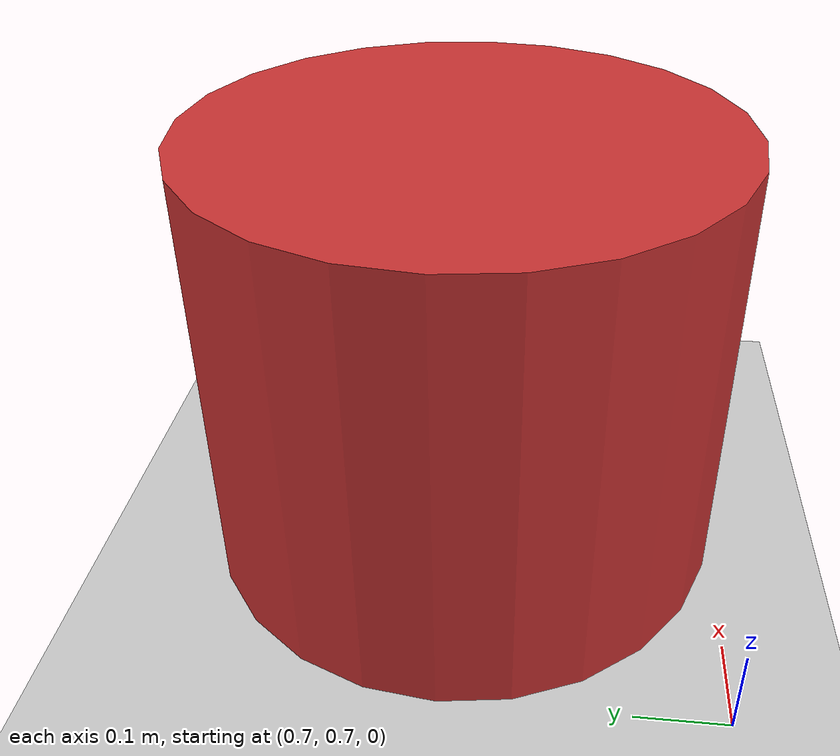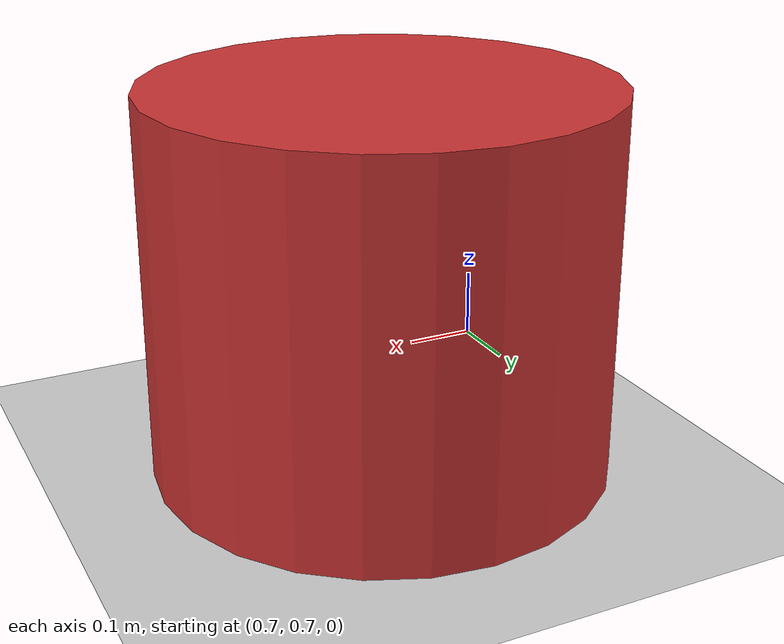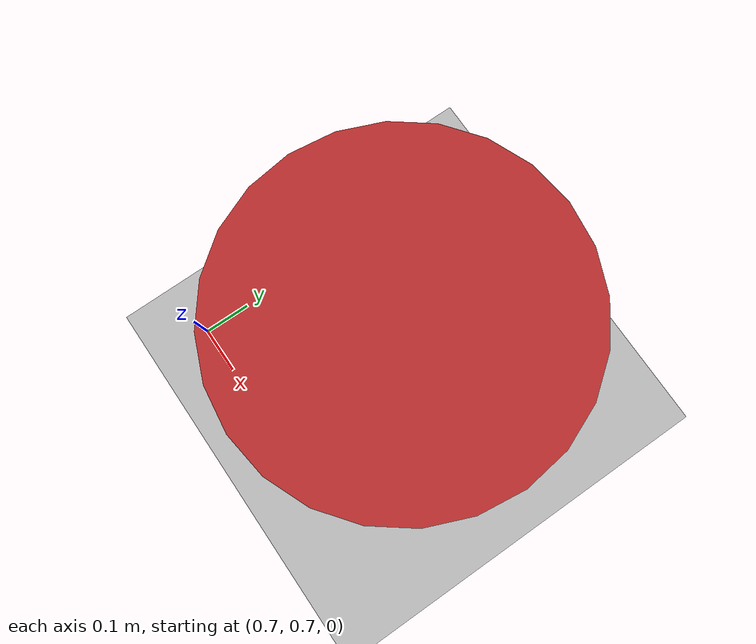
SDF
<sdf version="1.7">
 <world name="default">
  <light name="sun" type="directional">
   <pose>0 0 10 0 -0 0</pose>
   <diffuse>0.8 0.8 0.8 1</diffuse>
   <specular>0.2 0.2 0.2 1</specular>
   <attenuation>
    <range>1000</range>
    <constant>0.9</constant>
    <linear>0.01</linear>
    <quadratic>0.001</quadratic>
   </attenuation>
   <direction>-0.5 0.1 -0.9</direction>
   <spot><inner_angle>0</inner_angle><outer_angle>0</outer_angle><falloff>0</falloff></spot>
  </light>
  <model name="ground_plane">
   <static>1</static>
   <link name="link">
    <collision name="collision">
     <geometry><plane><normal>0 0 1</normal><size>100 100</size></plane></geometry>
     <surface>
      <contact><collide_bitmask>65535</collide_bitmask></contact>
      <friction>
       <ode><mu>10</mu><mu2>10</mu2></ode>
       <torsional>
        <ode><mu>10</mu><surface_radius>0.06</surface_radius><use_patch_radius>false</use_patch_radius></ode>
       </torsional>
      </friction>
     </surface>
    </collision>
    <visual name="visual">
     <cast_shadows>0</cast_shadows>
     <geometry><plane><normal>0 0 1</normal><size>100 100</size></plane></geometry>
     <material>
      <script><uri>file://media/materials/scripts/gazebo.material</uri><name>Gazebo/Grey</name></script>
     </material>
    </visual>
   </link>
  </model>
  <gravity>0 0 -9.8</gravity>
  <magnetic_field>6e-06 2.3e-05 -4.2e-05</magnetic_field>
  <atmosphere type="adiabatic"/>
  <physics type="ode">
   <max_step_size>0.001</max_step_size>
   <real_time_factor>1</real_time_factor>
   <real_time_update_rate>1000</real_time_update_rate>
  </physics>
  <scene><ambient>0.4 0.4 0.4 1</ambient><background>0.7 0.7 0.7 1</background><shadows>1</shadows></scene>
  <audio><device>default</device></audio>
  <spherical_coordinates>
   <surface_model>EARTH_WGS84</surface_model>
   <latitude_deg>0</latitude_deg>
   <longitude_deg>0</longitude_deg>
   <elevation>0</elevation>
   <heading_deg>0</heading_deg>
  </spherical_coordinates>
  <model name="obstacle_cylinder">
   <static>1</static>
   <pose>1 1 0.25 0 0 0</pose>
   <link name="link">
    <collision name="collision">
     <geometry><cylinder><radius>0.3</radius><length>0.5</length></cylinder></geometry>
     <surface><friction><ode><mu>1.0</mu><mu2>1.0</mu2></ode></friction></surface>
    </collision>
    <visual name="visual">
     <geometry><cylinder><radius>0.3</radius><length>0.5</length></cylinder></geometry>
     <material>
      <ambient>0.8 0.2 0.2 1</ambient>
      <diffuse>0.8 0.2 0.2 1</diffuse>
      <specular>0.1 0.1 0.1 1</specular>
     </material>
    </visual>
   </link>
  </model>
 </world>
</sdf>
